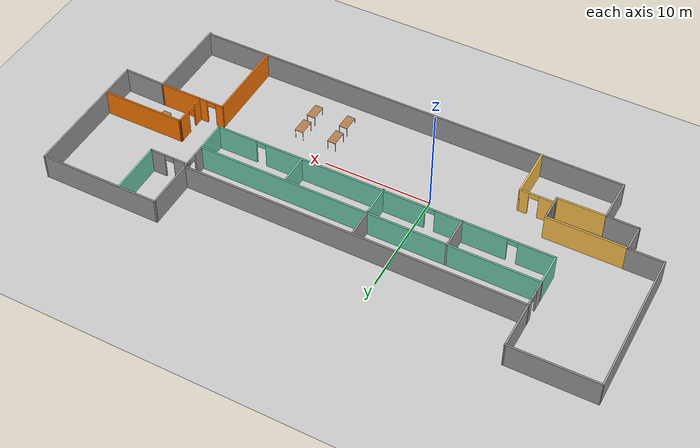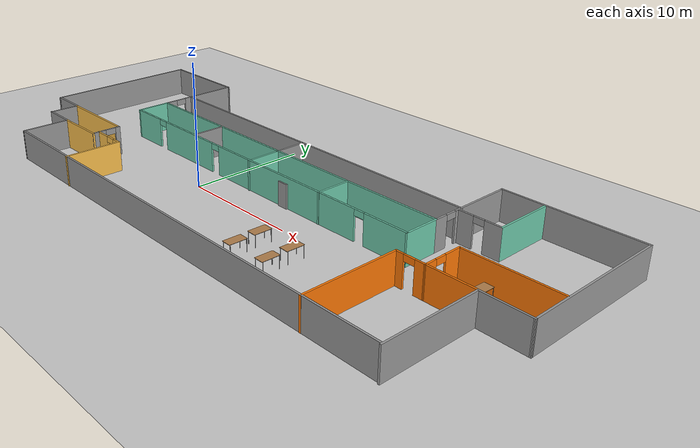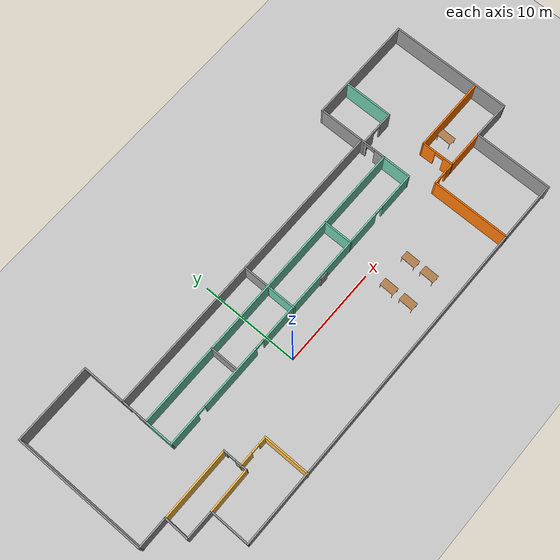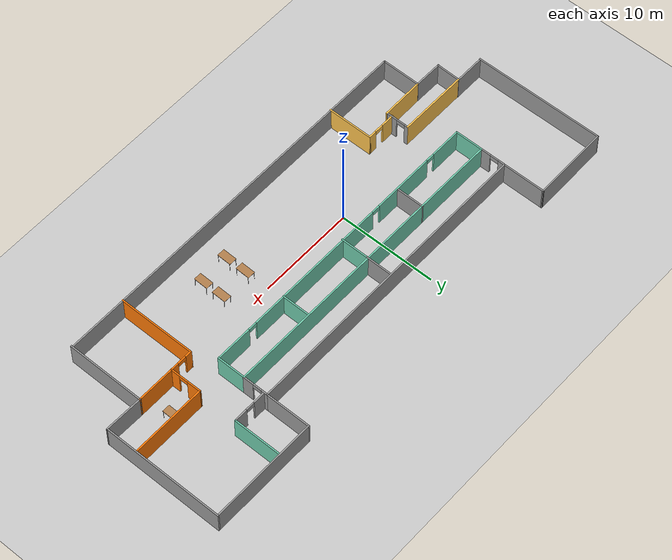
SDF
<sdf version="1.6">
 <world name="default">
  <model name="ground_plane">
   <static>1</static>
   <link name="link">
    <collision name="collision">
     <geometry><plane><normal>0 0 1</normal><size>100 100</size></plane></geometry>
     <surface>
      <contact><collide_bitmask>65535</collide_bitmask></contact>
      <friction><ode><mu>100</mu><mu2>50</mu2></ode></friction>
     </surface>
    </collision>
    <visual name="visual">
     <cast_shadows>0</cast_shadows>
     <geometry><plane><normal>0 0 1</normal><size>100 100</size></plane></geometry>
     <material>
      <script><uri>file://media/materials/scripts/gazebo.material</uri><name>Gazebo/Grey</name></script>
     </material>
    </visual>
   </link>
  </model>
  <model name="building">
   <model name="buildingEditorModel">
    <pose>5.31659 2.25421 0 0 -0 0</pose>
    <link name="Door_2">
     <collision name="Door_2_Collision">
      <geometry><box><size>0.9 0.17 2</size></box></geometry>
      <pose>0 0 1 0 -0 0</pose>
     </collision>
     <visual name="Door_2_Visual">
      <pose>0 0 1 0 -0 0</pose>
      <geometry><box><size>0.9 0.17 2</size></box></geometry>
      <material>
       <script><uri>file://media/materials/scripts/gazebo.material</uri><name>Gazebo/Grey</name></script>
      </material>
     </visual>
     <pose>2.1186 -0.056948 0 0 -0 0</pose>
    </link>
    <link name="Wall_12">
     <collision name="Wall_12_Collision">
      <geometry><box><size>11.25 0.15 2.5</size></box></geometry>
      <pose>0 0 1.25 0 -0 0</pose>
     </collision>
     <visual name="Wall_12_Visual">
      <pose>0 0 1.25 0 -0 0</pose>
      <geometry><box><size>11.25 0.15 2.5</size></box></geometry>
      <material>
       <script><uri>file://media/materials/scripts/gazebo.material</uri><name>Gazebo/Grey</name></script>
       <ambient>1 1 1 1</ambient>
      </material>
      <meta><layer>0</layer></meta>
     </visual>
     <pose>19.5996 10.1001 0 0 -0 3.14159</pose>
    </link>
    <link name="Wall_13">
     <collision name="Wall_13_Collision">
      <geometry><box><size>4.75 0.15 2.5</size></box></geometry>
      <pose>0 0 1.25 0 -0 0</pose>
     </collision>
     <visual name="Wall_13_Visual">
      <pose>0 0 1.25 0 -0 0</pose>
      <geometry><box><size>4.75 0.15 2.5</size></box></geometry>
      <material>
       <script><uri>file://media/materials/scripts/gazebo.material</uri><name>Gazebo/Grey</name></script>
       <ambient>1 1 1 1</ambient>
      </material>
      <meta><layer>0</layer></meta>
     </visual>
     <pose>14.0496 7.80012 0 0 -0 -1.5708</pose>
    </link>
    <link name="Wall_14">
     <collision name="Wall_14_Collision">
      <geometry><box><size>31.5 0.15 2.5</size></box></geometry>
      <pose>0 0 1.25 0 -0 0</pose>
     </collision>
     <visual name="Wall_14_Visual">
      <pose>0 0 1.25 0 -0 0</pose>
      <geometry><box><size>31.5 0.15 2.5</size></box></geometry>
      <material>
       <script><uri>file://media/materials/scripts/gazebo.material</uri><name>Gazebo/Grey</name></script>
       <ambient>1 1 1 1</ambient>
      </material>
      <meta><layer>0</layer></meta>
     </visual>
     <pose>-1.62541 5.50012 0 0 -0 3.14159</pose>
    </link>
    <link name="Wall_15">
     <collision name="Wall_15_Collision">
      <geometry><box><size>4.5 0.15 2.5</size></box></geometry>
      <pose>0 0 1.25 0 -0 0</pose>
     </collision>
     <visual name="Wall_15_Visual">
      <pose>0 0 1.25 0 -0 0</pose>
      <geometry><box><size>4.5 0.15 2.5</size></box></geometry>
      <material>
       <script><uri>file://media/materials/scripts/gazebo.material</uri><name>Gazebo/Grey</name></script>
       <ambient>1 1 1 1</ambient>
      </material>
      <meta><layer>0</layer></meta>
     </visual>
     <pose>-17.3004 7.67512 0 0 -0 1.5708</pose>
    </link>
    <link name="Wall_18">
     <collision name="Wall_18_Collision">
      <geometry><box><size>8.00016 0.15 2.5</size></box></geometry>
      <pose>0 0 1.25 0 -0 0</pose>
     </collision>
     <visual name="Wall_18_Visual">
      <pose>0 0 1.25 0 -0 0</pose>
      <geometry><box><size>8.00016 0.15 2.5</size></box></geometry>
      <material>
       <script><uri>file://media/materials/scripts/gazebo.material</uri><name>Gazebo/Grey</name></script>
       <ambient>1 1 1 1</ambient>
      </material>
      <meta><layer>0</layer></meta>
     </visual>
     <pose>-21.2254 9.82512 0 0 -0 0.006369</pose>
    </link>
    <link name="Wall_20">
     <pose>-17.3004 4.20012 0 0 -0 -1.5708</pose>
     <visual name="Wall_20_Visual_0">
      <pose>-1.00181 0 1.25 0 -0 0</pose>
      <geometry><box><size>0.746388 0.15 2.5</size></box></geometry>
      <material>
       <script><uri>file://media/materials/scripts/gazebo.material</uri><name>Gazebo/Grey</name></script>
       <ambient>1 1 1 1</ambient>
      </material>
      <meta><layer>0</layer></meta>
     </visual>
     <collision name="Wall_20_Collision_0">
      <geometry><box><size>0.746388 0.15 2.5</size></box></geometry>
      <pose>-1.00181 0 1.25 0 -0 0</pose>
     </collision>
     <visual name="Wall_20_Visual_1">
      <pose>0.823194 0 1.25 0 -0 0</pose>
      <geometry><box><size>1.10361 0.15 2.5</size></box></geometry>
      <material>
       <script><uri>file://media/materials/scripts/gazebo.material</uri><name>Gazebo/Grey</name></script>
       <ambient>1 1 1 1</ambient>
      </material>
      <meta><layer>0</layer></meta>
     </visual>
     <collision name="Wall_20_Collision_1">
      <geometry><box><size>1.10361 0.15 2.5</size></box></geometry>
      <pose>0.823194 0 1.25 0 -0 0</pose>
     </collision>
     <visual name="Wall_20_Visual_2">
      <pose>-0.178612 0 2.25 0 -0 0</pose>
      <geometry><box><size>0.9 0.15 0.5</size></box></geometry>
      <material>
       <script><uri>file://media/materials/scripts/gazebo.material</uri><name>Gazebo/Grey</name></script>
       <ambient>1 1 1 1</ambient>
      </material>
      <meta><layer>0</layer></meta>
     </visual>
     <collision name="Wall_20_Collision_2">
      <geometry><box><size>0.9 0.15 0.5</size></box></geometry>
      <pose>-0.178612 0 2.25 0 -0 0</pose>
     </collision>
    </link>
    <link name="Wall_21">
     <collision name="Wall_21_Collision">
      <geometry><box><size>31.5 0.15 2.5</size></box></geometry>
      <pose>0 0 1.25 0 -0 0</pose>
     </collision>
     <visual name="Wall_21_Visual">
      <pose>0 0 1.25 0 -0 0</pose>
      <geometry><box><size>31.5 0.15 2.5</size></box></geometry>
      <material>
       <script><uri>file://media/materials/scripts/gazebo.material</uri><name>Gazebo/Grey</name></script>
       <ambient>0.435294 0.796078 0.67451 1</ambient>
      </material>
      <meta><layer>0</layer></meta>
     </visual>
     <pose>-1.62541 2.90012 0 0 -0 0</pose>
    </link>
    <link name="Wall_22">
     <pose>14.0496 4.20012 0 0 -0 1.5708</pose>
     <visual name="Wall_22_Visual_0">
      <pose>-0.810224 0 1.25 0 -0 0</pose>
      <geometry><box><size>1.12955 0.15 2.5</size></box></geometry>
      <material>
       <script><uri>file://media/materials/scripts/gazebo.material</uri><name>Gazebo/Grey</name></script>
       <ambient>1 1 1 1</ambient>
      </material>
      <meta><layer>0</layer></meta>
     </visual>
     <collision name="Wall_22_Collision_0">
      <geometry><box><size>1.12955 0.15 2.5</size></box></geometry>
      <pose>-0.810224 0 1.25 0 -0 0</pose>
     </collision>
     <visual name="Wall_22_Visual_1">
      <pose>1.01478 0 1.25 0 -0 0</pose>
      <geometry><box><size>0.720448 0.15 2.5</size></box></geometry>
      <material>
       <script><uri>file://media/materials/scripts/gazebo.material</uri><name>Gazebo/Grey</name></script>
       <ambient>1 1 1 1</ambient>
      </material>
      <meta><layer>0</layer></meta>
     </visual>
     <collision name="Wall_22_Collision_1">
      <geometry><box><size>0.720448 0.15 2.5</size></box></geometry>
      <pose>1.01478 0 1.25 0 -0 0</pose>
     </collision>
     <visual name="Wall_22_Visual_2">
      <pose>0.204552 0 2.25 0 -0 0</pose>
      <geometry><box><size>0.9 0.15 0.5</size></box></geometry>
      <material>
       <script><uri>file://media/materials/scripts/gazebo.material</uri><name>Gazebo/Grey</name></script>
       <ambient>1 1 1 1</ambient>
      </material>
      <meta><layer>0</layer></meta>
     </visual>
     <collision name="Wall_22_Collision_2">
      <geometry><box><size>0.9 0.15 0.5</size></box></geometry>
      <pose>0.204552 0 2.25 0 -0 0</pose>
     </collision>
    </link>
    <link name="Wall_24">
     <collision name="Wall_24_Collision">
      <geometry><box><size>3 0.15 2.5</size></box></geometry>
      <pose>0 0 1.25 0 -0 0</pose>
     </collision>
     <visual name="Wall_24_Visual">
      <pose>0 0 1.25 0 -0 0</pose>
      <geometry><box><size>3 0.15 2.5</size></box></geometry>
      <material>
       <script><uri>file://media/materials/scripts/gazebo.material</uri><name>Gazebo/Grey</name></script>
       <ambient>0.435294 0.796078 0.67451 1</ambient>
      </material>
      <meta><layer>0</layer></meta>
     </visual>
     <pose>-17.3004 1.47512 0 0 -0 -1.5708</pose>
    </link>
    <link name="Wall_25">
     <pose>-1.62541 0.050122 0 0 -0 0</pose>
     <visual name="Wall_25_Visual_0">
      <pose>-14.0877 0 1.25 0 -0 0</pose>
      <geometry><box><size>3.32458 0.15 2.5</size></box></geometry>
      <material>
       <script><uri>file://media/materials/scripts/gazebo.material</uri><name>Gazebo/Grey</name></script>
       <ambient>0.435294 0.796078 0.67451 1</ambient>
      </material>
      <meta><layer>0</layer></meta>
     </visual>
     <collision name="Wall_25_Collision_0">
      <geometry><box><size>3.32458 0.15 2.5</size></box></geometry>
      <pose>-14.0877 0 1.25 0 -0 0</pose>
     </collision>
     <visual name="Wall_25_Visual_1">
      <pose>-8.27902 0 1.25 0 -0 0</pose>
      <geometry><box><size>6.4928 0.15 2.5</size></box></geometry>
      <material>
       <script><uri>file://media/materials/scripts/gazebo.material</uri><name>Gazebo/Grey</name></script>
       <ambient>0.435294 0.796078 0.67451 1</ambient>
      </material>
      <meta><layer>0</layer></meta>
     </visual>
     <collision name="Wall_25_Collision_1">
      <geometry><box><size>6.4928 0.15 2.5</size></box></geometry>
      <pose>-8.27902 0 1.25 0 -0 0</pose>
     </collision>
     <visual name="Wall_25_Visual_2">
      <pose>3.43273 0 1.25 0 -0 0</pose>
      <geometry><box><size>15.1307 0.15 2.5</size></box></geometry>
      <material>
       <script><uri>file://media/materials/scripts/gazebo.material</uri><name>Gazebo/Grey</name></script>
       <ambient>0.435294 0.796078 0.67451 1</ambient>
      </material>
      <meta><layer>0</layer></meta>
     </visual>
     <collision name="Wall_25_Collision_2">
      <geometry><box><size>15.1307 0.15 2.5</size></box></geometry>
      <pose>3.43273 0 1.25 0 -0 0</pose>
     </collision>
     <visual name="Wall_25_Visual_3">
      <pose>13.824 0 1.25 0 -0 0</pose>
      <geometry><box><size>3.85191 0.15 2.5</size></box></geometry>
      <material>
       <script><uri>file://media/materials/scripts/gazebo.material</uri><name>Gazebo/Grey</name></script>
       <ambient>0.435294 0.796078 0.67451 1</ambient>
      </material>
      <meta><layer>0</layer></meta>
     </visual>
     <collision name="Wall_25_Collision_3">
      <geometry><box><size>3.85191 0.15 2.5</size></box></geometry>
      <pose>13.824 0 1.25 0 -0 0</pose>
     </collision>
     <visual name="Wall_25_Visual_4">
      <pose>-11.9754 0 2.25 0 -0 0</pose>
      <geometry><box><size>0.9 0.15 0.5</size></box></geometry>
      <material>
       <script><uri>file://media/materials/scripts/gazebo.material</uri><name>Gazebo/Grey</name></script>
       <ambient>0.435294 0.796078 0.67451 1</ambient>
      </material>
      <meta><layer>0</layer></meta>
     </visual>
     <collision name="Wall_25_Collision_4">
      <geometry><box><size>0.9 0.15 0.5</size></box></geometry>
      <pose>-11.9754 0 2.25 0 -0 0</pose>
     </collision>
     <visual name="Wall_25_Visual_5">
      <pose>-4.58262 0 2.25 0 -0 0</pose>
      <geometry><box><size>0.9 0.15 0.5</size></box></geometry>
      <material>
       <script><uri>file://media/materials/scripts/gazebo.material</uri><name>Gazebo/Grey</name></script>
       <ambient>0.435294 0.796078 0.67451 1</ambient>
      </material>
      <meta><layer>0</layer></meta>
     </visual>
     <collision name="Wall_25_Collision_5">
      <geometry><box><size>0.9 0.15 0.5</size></box></geometry>
      <pose>-4.58262 0 2.25 0 -0 0</pose>
     </collision>
     <visual name="Wall_25_Visual_6">
      <pose>11.4481 0 2.25 0 -0 0</pose>
      <geometry><box><size>0.9 0.15 0.5</size></box></geometry>
      <material>
       <script><uri>file://media/materials/scripts/gazebo.material</uri><name>Gazebo/Grey</name></script>
       <ambient>0.435294 0.796078 0.67451 1</ambient>
      </material>
      <meta><layer>0</layer></meta>
     </visual>
     <collision name="Wall_25_Collision_6">
      <geometry><box><size>0.9 0.15 0.5</size></box></geometry>
      <pose>11.4481 0 2.25 0 -0 0</pose>
     </collision>
    </link>
    <link name="Wall_26">
     <collision name="Wall_26_Collision">
      <geometry><box><size>3 0.15 2.5</size></box></geometry>
      <pose>0 0 1.25 0 -0 0</pose>
     </collision>
     <visual name="Wall_26_Visual">
      <pose>0 0 1.25 0 -0 0</pose>
      <geometry><box><size>3 0.15 2.5</size></box></geometry>
      <material>
       <script><uri>file://media/materials/scripts/gazebo.material</uri><name>Gazebo/Grey</name></script>
       <ambient>0.435294 0.796078 0.67451 1</ambient>
      </material>
      <meta><layer>0</layer></meta>
     </visual>
     <pose>14.0496 1.47512 0 0 -0 1.5708</pose>
    </link>
    <link name="Wall_28">
     <collision name="Wall_28_Collision">
      <geometry><box><size>2.75 0.15 2.5</size></box></geometry>
      <pose>0 0 1.25 0 -0 0</pose>
     </collision>
     <visual name="Wall_28_Visual">
      <pose>0 0 1.25 0 -0 0</pose>
      <geometry><box><size>2.75 0.15 2.5</size></box></geometry>
      <material>
       <script><uri>file://media/materials/scripts/gazebo.material</uri><name>Gazebo/Grey</name></script>
       <ambient>1 1 1 1</ambient>
      </material>
      <meta><layer>0</layer></meta>
     </visual>
     <pose>-1.8761 4.11632 0 0 -0 -1.5708</pose>
    </link>
    <link name="Wall_30">
     <collision name="Wall_30_Collision">
      <geometry><box><size>3 0.15 2.5</size></box></geometry>
      <pose>0 0 1.25 0 -0 0</pose>
     </collision>
     <visual name="Wall_30_Visual">
      <pose>0 0 1.25 0 -0 0</pose>
      <geometry><box><size>3 0.15 2.5</size></box></geometry>
      <material>
       <script><uri>file://media/materials/scripts/gazebo.material</uri><name>Gazebo/Grey</name></script>
       <ambient>1 1 1 1</ambient>
      </material>
      <meta><layer>0</layer></meta>
     </visual>
     <pose>-9.11327 1.47517 0 0 -0 -1.5708</pose>
    </link>
    <link name="Wall_34">
     <collision name="Wall_34_Collision">
      <geometry><box><size>3 0.15 2.5</size></box></geometry>
      <pose>0 0 1.25 0 -0 0</pose>
     </collision>
     <visual name="Wall_34_Visual">
      <pose>0 0 1.25 0 -0 0</pose>
      <geometry><box><size>3 0.15 2.5</size></box></geometry>
      <material>
       <script><uri>file://media/materials/scripts/gazebo.material</uri><name>Gazebo/Grey</name></script>
       <ambient>0.435294 0.796078 0.67451 1</ambient>
      </material>
      <meta><layer>0</layer></meta>
     </visual>
     <pose>-1.8761 1.39132 0 0 -0 -1.5708</pose>
    </link>
    <link name="Wall_36">
     <collision name="Wall_36_Collision">
      <geometry><box><size>3 0.15 2.5</size></box></geometry>
      <pose>0 0 1.25 0 -0 0</pose>
     </collision>
     <visual name="Wall_36_Visual">
      <pose>0 0 1.25 0 -0 0</pose>
      <geometry><box><size>3 0.15 2.5</size></box></geometry>
      <material>
       <script><uri>file://media/materials/scripts/gazebo.material</uri><name>Gazebo/Grey</name></script>
       <ambient>0.435294 0.796078 0.67451 1</ambient>
      </material>
      <meta><layer>0</layer></meta>
     </visual>
     <pose>5.85391 1.44923 0 0 -0 -1.5708</pose>
    </link>
    <link name="Wall_38">
     <collision name="Wall_38_Collision">
      <geometry><box><size>12.5 0.15 2.5</size></box></geometry>
      <pose>0 0 1.25 0 -0 0</pose>
     </collision>
     <visual name="Wall_38_Visual">
      <pose>0 0 1.25 0 -0 0</pose>
      <geometry><box><size>12.5 0.15 2.5</size></box></geometry>
      <material>
       <script><uri>file://media/materials/scripts/gazebo.material</uri><name>Gazebo/Grey</name></script>
       <ambient>1 1 1 1</ambient>
      </material>
      <meta><layer>0</layer></meta>
     </visual>
     <pose>25.1496 3.92512 0 0 -0 -1.5708</pose>
    </link>
    <link name="Wall_39">
     <collision name="Wall_39_Collision">
      <geometry><box><size>3.97441 0.15 2.5</size></box></geometry>
      <pose>0 0 1.25 0 -0 0</pose>
     </collision>
     <visual name="Wall_39_Visual">
      <pose>0 0 1.25 0 -0 0</pose>
      <geometry><box><size>3.97441 0.15 2.5</size></box></geometry>
      <material>
       <script><uri>file://media/materials/scripts/gazebo.material</uri><name>Gazebo/Grey</name></script>
       <ambient>1 1 1 1</ambient>
      </material>
      <meta><layer>0</layer></meta>
     </visual>
     <pose>23.2376 -2.21097 0 0 -0 3.12125</pose>
    </link>
    <link name="Wall_40">
     <collision name="Wall_40_Collision">
      <geometry><box><size>8.07786 0.15 2.5</size></box></geometry>
      <pose>0 0 1.25 0 -0 0</pose>
     </collision>
     <visual name="Wall_40_Visual">
      <pose>0 0 1.25 0 -0 0</pose>
      <geometry><box><size>8.07786 0.15 2.5</size></box></geometry>
      <material>
       <script><uri>file://media/materials/scripts/gazebo.material</uri><name>Gazebo/Grey</name></script>
       <ambient>1 1 1 1</ambient>
      </material>
      <meta><layer>0</layer></meta>
     </visual>
     <pose>21.3126 -6.13597 0 0 -0 -1.57407</pose>
    </link>
    <link name="Wall_42">
     <collision name="Wall_42_Collision">
      <geometry><box><size>40.5 0.15 2.5</size></box></geometry>
      <pose>0 0 1.25 0 -0 0</pose>
     </collision>
     <visual name="Wall_42_Visual">
      <pose>0 0 1.25 0 -0 0</pose>
      <geometry><box><size>40.5 0.15 2.5</size></box></geometry>
      <material>
       <script><uri>file://media/materials/scripts/gazebo.material</uri><name>Gazebo/Grey</name></script>
       <ambient>1 1 1 1</ambient>
      </material>
      <meta><layer>0</layer></meta>
     </visual>
     <pose>0.974593 -9.99988 0 0 -0 0</pose>
    </link>
    <link name="Wall_45">
     <collision name="Wall_45_Collision">
      <geometry><box><size>7.25 0.15 2.5</size></box></geometry>
      <pose>0 0 1.25 0 -0 0</pose>
     </collision>
     <visual name="Wall_45_Visual">
      <pose>0 0 1.25 0 -0 0</pose>
      <geometry><box><size>7.25 0.15 2.5</size></box></geometry>
      <material>
       <script><uri>file://media/materials/scripts/gazebo.material</uri><name>Gazebo/Grey</name></script>
       <ambient>1 0.764706 0.305882 1</ambient>
      </material>
      <meta><layer>0</layer></meta>
     </visual>
     <pose>-18.4226 -3.61565 0 0 -0 0</pose>
    </link>
    <link name="Wall_46">
     <pose>-14.8726 -4.81659 0 0 -0 -1.5708</pose>
     <visual name="Wall_46_Visual_0">
      <pose>-1.06386 0 1.25 0 -0 0</pose>
      <geometry><box><size>0.424155 0.15 2.5</size></box></geometry>
      <material>
       <script><uri>file://media/materials/scripts/gazebo.material</uri><name>Gazebo/Grey</name></script>
       <ambient>1 1 1 1</ambient>
      </material>
      <meta><layer>0</layer></meta>
     </visual>
     <collision name="Wall_46_Collision_0">
      <geometry><box><size>0.424155 0.15 2.5</size></box></geometry>
      <pose>-1.06386 0 1.25 0 -0 0</pose>
     </collision>
     <visual name="Wall_46_Visual_1">
      <pose>0.662078 0 1.25 0 -0 0</pose>
      <geometry><box><size>1.22772 0.15 2.5</size></box></geometry>
      <material>
       <script><uri>file://media/materials/scripts/gazebo.material</uri><name>Gazebo/Grey</name></script>
       <ambient>1 1 1 1</ambient>
      </material>
      <meta><layer>0</layer></meta>
     </visual>
     <collision name="Wall_46_Collision_1">
      <geometry><box><size>1.22772 0.15 2.5</size></box></geometry>
      <pose>0.662078 0 1.25 0 -0 0</pose>
     </collision>
     <visual name="Wall_46_Visual_2">
      <pose>-0.401784 0 2.25 0 -0 0</pose>
      <geometry><box><size>0.9 0.15 0.5</size></box></geometry>
      <material>
       <script><uri>file://media/materials/scripts/gazebo.material</uri><name>Gazebo/Grey</name></script>
       <ambient>1 1 1 1</ambient>
      </material>
      <meta><layer>0</layer></meta>
     </visual>
     <collision name="Wall_46_Collision_2">
      <geometry><box><size>0.9 0.15 0.5</size></box></geometry>
      <pose>-0.401784 0 2.25 0 -0 0</pose>
     </collision>
    </link>
    <link name="Wall_47">
     <collision name="Wall_47_Collision">
      <geometry><box><size>4.45217 0.15 2.5</size></box></geometry>
      <pose>0 0 1.25 0 -0 0</pose>
     </collision>
     <visual name="Wall_47_Visual">
      <pose>0 0 1.25 0 -0 0</pose>
      <geometry><box><size>4.45217 0.15 2.5</size></box></geometry>
      <material>
       <script><uri>file://media/materials/scripts/gazebo.material</uri><name>Gazebo/Grey</name></script>
       <ambient>1 0.764706 0.305882 1</ambient>
      </material>
      <meta><layer>0</layer></meta>
     </visual>
     <pose>-16.9976 -6.04235 0 0 -0 -3.13006</pose>
    </link>
    <link name="Wall_5">
     <collision name="Wall_5_Collision">
      <geometry><box><size>13.566 0.15 2.5</size></box></geometry>
      <pose>0 0 1.25 0 -0 0</pose>
     </collision>
     <visual name="Wall_5_Visual">
      <pose>0 0 1.25 0 -0 0</pose>
      <geometry><box><size>13.566 0.15 2.5</size></box></geometry>
      <material>
       <script><uri>file://media/materials/scripts/gazebo.material</uri><name>Gazebo/Grey</name></script>
       <ambient>1 1 1 1</ambient>
      </material>
      <meta><layer>0</layer></meta>
     </visual>
     <pose>-25.1115 3.09223 0 0 -0 -1.565</pose>
    </link>
    <link name="Wall_51">
     <pose>-13.3738 -5.4524 0 0 -0 0</pose>
     <visual name="Wall_51_Visual_0">
      <pose>-0.891642 0 1.25 0 -0 0</pose>
      <geometry><box><size>1.46672 0.15 2.5</size></box></geometry>
      <material>
       <script><uri>file://media/materials/scripts/gazebo.material</uri><name>Gazebo/Grey</name></script>
       <ambient>1 0.764706 0.305882 1</ambient>
      </material>
      <meta><layer>0</layer></meta>
     </visual>
     <collision name="Wall_51_Collision_0">
      <geometry><box><size>1.46672 0.15 2.5</size></box></geometry>
      <pose>-0.891642 0 1.25 0 -0 0</pose>
     </collision>
     <visual name="Wall_51_Visual_1">
      <pose>1.18336 0 1.25 0 -0 0</pose>
      <geometry><box><size>0.883284 0.15 2.5</size></box></geometry>
      <material>
       <script><uri>file://media/materials/scripts/gazebo.material</uri><name>Gazebo/Grey</name></script>
       <ambient>1 0.764706 0.305882 1</ambient>
      </material>
      <meta><layer>0</layer></meta>
     </visual>
     <collision name="Wall_51_Collision_1">
      <geometry><box><size>0.883284 0.15 2.5</size></box></geometry>
      <pose>1.18336 0 1.25 0 -0 0</pose>
     </collision>
     <visual name="Wall_51_Visual_2">
      <pose>0.291716 0 2.25 0 -0 0</pose>
      <geometry><box><size>0.9 0.15 0.5</size></box></geometry>
      <material>
       <script><uri>file://media/materials/scripts/gazebo.material</uri><name>Gazebo/Grey</name></script>
       <ambient>1 0.764706 0.305882 1</ambient>
      </material>
      <meta><layer>0</layer></meta>
     </visual>
     <collision name="Wall_51_Collision_2">
      <geometry><box><size>0.9 0.15 0.5</size></box></geometry>
      <pose>0.291716 0 2.25 0 -0 0</pose>
     </collision>
    </link>
    <link name="Wall_52">
     <collision name="Wall_52_Collision">
      <geometry><box><size>4.75 0.15 2.5</size></box></geometry>
      <pose>0 0 1.25 0 -0 0</pose>
     </collision>
     <visual name="Wall_52_Visual">
      <pose>0 0 1.25 0 -0 0</pose>
      <geometry><box><size>4.75 0.15 2.5</size></box></geometry>
      <material>
       <script><uri>file://media/materials/scripts/gazebo.material</uri><name>Gazebo/Grey</name></script>
       <ambient>1 0.764706 0.305882 1</ambient>
      </material>
      <meta><layer>0</layer></meta>
     </visual>
     <pose>-11.8238 -7.7524 0 0 -0 -1.5708</pose>
    </link>
    <link name="Wall_54">
     <collision name="Wall_54_Collision">
      <geometry><box><size>7.75 0.15 2.5</size></box></geometry>
      <pose>0 0 1.25 0 -0 0</pose>
     </collision>
     <visual name="Wall_54_Visual">
      <pose>0 0 1.25 0 -0 0</pose>
      <geometry><box><size>7.75 0.15 2.5</size></box></geometry>
      <material>
       <script><uri>file://media/materials/scripts/gazebo.material</uri><name>Gazebo/Grey</name></script>
       <ambient>0.996078 0.47451 0.0196078 1</ambient>
      </material>
      <meta><layer>0</layer></meta>
     </visual>
     <pose>21.2493 1.03252 0 0 -0 3.14159</pose>
    </link>
    <link name="Wall_58">
     <collision name="Wall_58_Collision">
      <geometry><box><size>4 0.15 2.5</size></box></geometry>
      <pose>0 0 1.25 0 -0 0</pose>
     </collision>
     <visual name="Wall_58_Visual">
      <pose>0 0 1.25 0 -0 0</pose>
      <geometry><box><size>4 0.15 2.5</size></box></geometry>
      <material>
       <script><uri>file://media/materials/scripts/gazebo.material</uri><name>Gazebo/Grey</name></script>
       <ambient>0.996078 0.47451 0.0196078 1</ambient>
      </material>
      <meta><layer>0</layer></meta>
     </visual>
     <pose>19.4005 -2.17206 0 0 -0 3.14159</pose>
    </link>
    <link name="Wall_59">
     <pose>17.4624 -0.569771 0 0 -0 1.57899</pose>
     <visual name="Wall_59_Visual_0">
      <pose>-1.17025 0 1.25 0 -0 0</pose>
      <geometry><box><size>1.01419 0.15 2.5</size></box></geometry>
      <material>
       <script><uri>file://media/materials/scripts/gazebo.material</uri><name>Gazebo/Grey</name></script>
       <ambient>0.996078 0.47451 0.0196078 1</ambient>
      </material>
      <meta><layer>0</layer></meta>
     </visual>
     <collision name="Wall_59_Collision_0">
      <geometry><box><size>1.01419 0.15 2.5</size></box></geometry>
      <pose>-1.17025 0 1.25 0 -0 0</pose>
     </collision>
     <visual name="Wall_59_Visual_1">
      <pose>0.957093 0 1.25 0 -0 0</pose>
      <geometry><box><size>1.4405 0.15 2.5</size></box></geometry>
      <material>
       <script><uri>file://media/materials/scripts/gazebo.material</uri><name>Gazebo/Grey</name></script>
       <ambient>0.996078 0.47451 0.0196078 1</ambient>
      </material>
      <meta><layer>0</layer></meta>
     </visual>
     <collision name="Wall_59_Collision_1">
      <geometry><box><size>1.4405 0.15 2.5</size></box></geometry>
      <pose>0.957093 0 1.25 0 -0 0</pose>
     </collision>
     <visual name="Wall_59_Visual_2">
      <pose>-0.213157 0 2.25 0 -0 0</pose>
      <geometry><box><size>0.9 0.15 0.5</size></box></geometry>
      <material>
       <script><uri>file://media/materials/scripts/gazebo.material</uri><name>Gazebo/Grey</name></script>
       <ambient>0.996078 0.47451 0.0196078 1</ambient>
      </material>
      <meta><layer>0</layer></meta>
     </visual>
     <collision name="Wall_59_Collision_2">
      <geometry><box><size>0.9 0.15 0.5</size></box></geometry>
      <pose>-0.213157 0 2.25 0 -0 0</pose>
     </collision>
    </link>
    <link name="Wall_6">
     <collision name="Wall_6_Collision">
      <geometry><box><size>3.25 0.15 2.5</size></box></geometry>
      <pose>0 0 1.25 0 -0 0</pose>
     </collision>
     <visual name="Wall_6_Visual">
      <pose>0 0 1.25 0 -0 0</pose>
      <geometry><box><size>3.25 0.15 2.5</size></box></geometry>
      <material>
       <script><uri>file://media/materials/scripts/gazebo.material</uri><name>Gazebo/Grey</name></script>
       <ambient>1 1 1 1</ambient>
      </material>
      <meta><layer>0</layer></meta>
     </visual>
     <pose>-23.5226 -3.58971 0 0 -0 0</pose>
    </link>
    <link name="Wall_62">
     <pose>16.3005 -2.17206 0 0 -0 3.14159</pose>
     <visual name="Wall_62_Visual_0">
      <pose>-0.814621 0 1.25 0 -0 0</pose>
      <geometry><box><size>0.870759 0.15 2.5</size></box></geometry>
      <material>
       <script><uri>file://media/materials/scripts/gazebo.material</uri><name>Gazebo/Grey</name></script>
       <ambient>0.996078 0.47451 0.0196078 1</ambient>
      </material>
      <meta><layer>0</layer></meta>
     </visual>
     <collision name="Wall_62_Collision_0">
      <geometry><box><size>0.870759 0.15 2.5</size></box></geometry>
      <pose>-0.814621 0 1.25 0 -0 0</pose>
     </collision>
     <visual name="Wall_62_Visual_1">
      <pose>0.885379 0 1.25 0 -0 0</pose>
      <geometry><box><size>0.729241 0.15 2.5</size></box></geometry>
      <material>
       <script><uri>file://media/materials/scripts/gazebo.material</uri><name>Gazebo/Grey</name></script>
       <ambient>0.996078 0.47451 0.0196078 1</ambient>
      </material>
      <meta><layer>0</layer></meta>
     </visual>
     <collision name="Wall_62_Collision_1">
      <geometry><box><size>0.729241 0.15 2.5</size></box></geometry>
      <pose>0.885379 0 1.25 0 -0 0</pose>
     </collision>
     <visual name="Wall_62_Visual_2">
      <pose>0.070759 0 2.25 0 -0 0</pose>
      <geometry><box><size>0.9 0.15 0.5</size></box></geometry>
      <material>
       <script><uri>file://media/materials/scripts/gazebo.material</uri><name>Gazebo/Grey</name></script>
       <ambient>0.996078 0.47451 0.0196078 1</ambient>
      </material>
      <meta><layer>0</layer></meta>
     </visual>
     <collision name="Wall_62_Collision_2">
      <geometry><box><size>0.9 0.15 0.5</size></box></geometry>
      <pose>0.070759 0 2.25 0 -0 0</pose>
     </collision>
    </link>
    <link name="Wall_63">
     <collision name="Wall_63_Collision">
      <geometry><box><size>8 0.15 2.5</size></box></geometry>
      <pose>0 0 1.25 0 -0 0</pose>
     </collision>
     <visual name="Wall_63_Visual">
      <pose>0 0 1.25 0 -0 0</pose>
      <geometry><box><size>8 0.15 2.5</size></box></geometry>
      <material>
       <script><uri>file://media/materials/scripts/gazebo.material</uri><name>Gazebo/Grey</name></script>
       <ambient>0.996078 0.47451 0.0196078 1</ambient>
      </material>
      <meta><layer>0</layer></meta>
     </visual>
     <pose>15.1255 -6.09706 0 0 -0 -1.5708</pose>
    </link>
    <link name="Wall_65">
     <pose>15.8249 5.18286 0 0 -0 0</pose>
     <visual name="Wall_65_Visual_0">
      <pose>-1.16758 0 1.25 0 -0 0</pose>
      <geometry><box><size>1.41484 0.15 2.5</size></box></geometry>
      <material>
       <script><uri>file://media/materials/scripts/gazebo.material</uri><name>Gazebo/Grey</name></script>
       <ambient>1 1 1 1</ambient>
      </material>
      <meta><layer>0</layer></meta>
     </visual>
     <collision name="Wall_65_Collision_0">
      <geometry><box><size>1.41484 0.15 2.5</size></box></geometry>
      <pose>-1.16758 0 1.25 0 -0 0</pose>
     </collision>
     <visual name="Wall_65_Visual_1">
      <pose>1.15742 0 1.25 0 -0 0</pose>
      <geometry><box><size>1.43516 0.15 2.5</size></box></geometry>
      <material>
       <script><uri>file://media/materials/scripts/gazebo.material</uri><name>Gazebo/Grey</name></script>
       <ambient>1 1 1 1</ambient>
      </material>
      <meta><layer>0</layer></meta>
     </visual>
     <collision name="Wall_65_Collision_1">
      <geometry><box><size>1.43516 0.15 2.5</size></box></geometry>
      <pose>1.15742 0 1.25 0 -0 0</pose>
     </collision>
     <visual name="Wall_65_Visual_2">
      <pose>-0.010162 0 2.25 0 -0 0</pose>
      <geometry><box><size>0.9 0.15 0.5</size></box></geometry>
      <material>
       <script><uri>file://media/materials/scripts/gazebo.material</uri><name>Gazebo/Grey</name></script>
       <ambient>1 1 1 1</ambient>
      </material>
      <meta><layer>0</layer></meta>
     </visual>
     <collision name="Wall_65_Collision_2">
      <geometry><box><size>0.9 0.15 0.5</size></box></geometry>
      <pose>-0.010162 0 2.25 0 -0 0</pose>
     </collision>
    </link>
    <link name="Wall_66">
     <collision name="Wall_66_Collision">
      <geometry><box><size>5 0.15 2.5</size></box></geometry>
      <pose>0 0 1.25 0 -0 0</pose>
     </collision>
     <visual name="Wall_66_Visual">
      <pose>0 0 1.25 0 -0 0</pose>
      <geometry><box><size>5 0.15 2.5</size></box></geometry>
      <material>
       <script><uri>file://media/materials/scripts/gazebo.material</uri><name>Gazebo/Grey</name></script>
       <ambient>0.435294 0.796078 0.67451 1</ambient>
      </material>
      <meta><layer>0</layer></meta>
     </visual>
     <pose>17.6249 7.60786 0 0 -0 1.5708</pose>
    </link>
    <link name="Wall_7">
     <collision name="Wall_7_Collision">
      <geometry><box><size>2.55019 0.15 2.5</size></box></geometry>
      <pose>0 0 1.25 0 -0 0</pose>
     </collision>
     <visual name="Wall_7_Visual">
      <pose>0 0 1.25 0 -0 0</pose>
      <geometry><box><size>2.55019 0.15 2.5</size></box></geometry>
      <material>
       <script><uri>file://media/materials/scripts/gazebo.material</uri><name>Gazebo/Grey</name></script>
       <ambient>1 1 1 1</ambient>
      </material>
      <meta><layer>0</layer></meta>
     </visual>
     <pose>-21.9985 -4.81547 0 0 -0 -1.59241</pose>
    </link>
    <link name="Wall_8">
     <collision name="Wall_8_Collision">
      <geometry><box><size>3.02606 0.15 2.5</size></box></geometry>
      <pose>0 0 1.25 0 -0 0</pose>
     </collision>
     <visual name="Wall_8_Visual">
      <pose>0 0 1.25 0 -0 0</pose>
      <geometry><box><size>3.02606 0.15 2.5</size></box></geometry>
      <material>
       <script><uri>file://media/materials/scripts/gazebo.material</uri><name>Gazebo/Grey</name></script>
       <ambient>1 1 1 1</ambient>
      </material>
      <meta><layer>0</layer></meta>
     </visual>
     <pose>-20.6124 -6.05419 0 0 -0 -0.009019</pose>
    </link>
    <link name="Wall_9">
     <collision name="Wall_9_Collision">
      <geometry><box><size>4.0828 0.15 2.5</size></box></geometry>
      <pose>0 0 1.25 0 -0 0</pose>
     </collision>
     <visual name="Wall_9_Visual">
      <pose>0 0 1.25 0 -0 0</pose>
      <geometry><box><size>4.0828 0.15 2.5</size></box></geometry>
      <material>
       <script><uri>file://media/materials/scripts/gazebo.material</uri><name>Gazebo/Grey</name></script>
       <ambient>1 1 1 1</ambient>
      </material>
      <meta><layer>0</layer></meta>
     </visual>
     <pose>-19.1874 -8.03352 0 0 -0 -1.57739</pose>
    </link>
    <static>1</static>
   </model>
   <model name="table_3_clone_2">
    <static>1</static>
    <link name="link">
     <collision name="surface">
      <pose>0 0 1 0 -0 0</pose>
      <geometry><box><size>1.5 0.8 0.03</size></box></geometry>
      <surface><friction><ode><mu>0.6</mu><mu2>0.6</mu2></ode></friction></surface>
     </collision>
     <visual name="visual1">
      <pose>0 0 1 0 -0 0</pose>
      <geometry><box><size>1.5 0.8 0.03</size></box></geometry>
      <material>
       <script><uri>file://media/materials/scripts/gazebo.material</uri><name>Gazebo/Wood</name></script>
      </material>
     </visual>
     <collision name="front_left_leg">
      <pose>0.68 0.38 0.5 0 -0 0</pose>
      <geometry><cylinder><radius>0.02</radius><length>1</length></cylinder></geometry>
     </collision>
     <visual name="front_left_leg">
      <pose>0.68 0.38 0.5 0 -0 0</pose>
      <geometry><cylinder><radius>0.02</radius><length>1</length></cylinder></geometry>
      <material>
       <script><uri>file://media/materials/scripts/gazebo.material</uri><name>Gazebo/Grey</name></script>
      </material>
     </visual>
     <collision name="front_right_leg">
      <pose>0.68 -0.38 0.5 0 -0 0</pose>
      <geometry><cylinder><radius>0.02</radius><length>1</length></cylinder></geometry>
     </collision>
     <visual name="front_right_leg">
      <pose>0.68 -0.38 0.5 0 -0 0</pose>
      <geometry><cylinder><radius>0.02</radius><length>1</length></cylinder></geometry>
      <material>
       <script><uri>file://media/materials/scripts/gazebo.material</uri><name>Gazebo/Grey</name></script>
      </material>
     </visual>
     <collision name="back_right_leg">
      <pose>-0.68 -0.38 0.5 0 -0 0</pose>
      <geometry><cylinder><radius>0.02</radius><length>1</length></cylinder></geometry>
     </collision>
     <visual name="back_right_leg">
      <pose>-0.68 -0.38 0.5 0 -0 0</pose>
      <geometry><cylinder><radius>0.02</radius><length>1</length></cylinder></geometry>
      <material>
       <script><uri>file://media/materials/scripts/gazebo.material</uri><name>Gazebo/Grey</name></script>
      </material>
     </visual>
     <collision name="back_left_leg">
      <pose>-0.68 0.38 0.5 0 -0 0</pose>
      <geometry><cylinder><radius>0.02</radius><length>1</length></cylinder></geometry>
     </collision>
     <visual name="back_left_leg">
      <pose>-0.68 0.38 0.5 0 -0 0</pose>
      <geometry><cylinder><radius>0.02</radius><length>1</length></cylinder></geometry>
      <material>
       <script><uri>file://media/materials/scripts/gazebo.material</uri><name>Gazebo/Grey</name></script>
      </material>
     </visual>
    </link>
    <pose>10.6353 -4.79761 0 0 0 -1.59458</pose>
   </model>
   <model name="table_3_clone_3">
    <static>1</static>
    <link name="link">
     <collision name="surface">
      <pose>0 0 1 0 -0 0</pose>
      <geometry><box><size>1.5 0.8 0.03</size></box></geometry>
      <surface><friction><ode><mu>0.6</mu><mu2>0.6</mu2></ode></friction></surface>
     </collision>
     <visual name="visual1">
      <pose>0 0 1 0 -0 0</pose>
      <geometry><box><size>1.5 0.8 0.03</size></box></geometry>
      <material>
       <script><uri>file://media/materials/scripts/gazebo.material</uri><name>Gazebo/Wood</name></script>
      </material>
     </visual>
     <collision name="front_left_leg">
      <pose>0.68 0.38 0.5 0 -0 0</pose>
      <geometry><cylinder><radius>0.02</radius><length>1</length></cylinder></geometry>
     </collision>
     <visual name="front_left_leg">
      <pose>0.68 0.38 0.5 0 -0 0</pose>
      <geometry><cylinder><radius>0.02</radius><length>1</length></cylinder></geometry>
      <material>
       <script><uri>file://media/materials/scripts/gazebo.material</uri><name>Gazebo/Grey</name></script>
      </material>
     </visual>
     <collision name="front_right_leg">
      <pose>0.68 -0.38 0.5 0 -0 0</pose>
      <geometry><cylinder><radius>0.02</radius><length>1</length></cylinder></geometry>
     </collision>
     <visual name="front_right_leg">
      <pose>0.68 -0.38 0.5 0 -0 0</pose>
      <geometry><cylinder><radius>0.02</radius><length>1</length></cylinder></geometry>
      <material>
       <script><uri>file://media/materials/scripts/gazebo.material</uri><name>Gazebo/Grey</name></script>
      </material>
     </visual>
     <collision name="back_right_leg">
      <pose>-0.68 -0.38 0.5 0 -0 0</pose>
      <geometry><cylinder><radius>0.02</radius><length>1</length></cylinder></geometry>
     </collision>
     <visual name="back_right_leg">
      <pose>-0.68 -0.38 0.5 0 -0 0</pose>
      <geometry><cylinder><radius>0.02</radius><length>1</length></cylinder></geometry>
      <material>
       <script><uri>file://media/materials/scripts/gazebo.material</uri><name>Gazebo/Grey</name></script>
      </material>
     </visual>
     <collision name="back_left_leg">
      <pose>-0.68 0.38 0.5 0 -0 0</pose>
      <geometry><cylinder><radius>0.02</radius><length>1</length></cylinder></geometry>
     </collision>
     <visual name="back_left_leg">
      <pose>-0.68 0.38 0.5 0 -0 0</pose>
      <geometry><cylinder><radius>0.02</radius><length>1</length></cylinder></geometry>
      <material>
       <script><uri>file://media/materials/scripts/gazebo.material</uri><name>Gazebo/Grey</name></script>
      </material>
     </visual>
    </link>
    <pose>10.6264 -2.65801 0 0 0 -1.59458</pose>
   </model>
   <model name="table_3_clone_4">
    <static>1</static>
    <link name="link">
     <collision name="surface">
      <pose>0 0 1 0 -0 0</pose>
      <geometry><box><size>1.5 0.8 0.03</size></box></geometry>
      <surface><friction><ode><mu>0.6</mu><mu2>0.6</mu2></ode></friction></surface>
     </collision>
     <visual name="visual1">
      <pose>0 0 1 0 -0 0</pose>
      <geometry><box><size>1.5 0.8 0.03</size></box></geometry>
      <material>
       <script><uri>file://media/materials/scripts/gazebo.material</uri><name>Gazebo/Wood</name></script>
      </material>
     </visual>
     <collision name="front_left_leg">
      <pose>0.68 0.38 0.5 0 -0 0</pose>
      <geometry><cylinder><radius>0.02</radius><length>1</length></cylinder></geometry>
     </collision>
     <visual name="front_left_leg">
      <pose>0.68 0.38 0.5 0 -0 0</pose>
      <geometry><cylinder><radius>0.02</radius><length>1</length></cylinder></geometry>
      <material>
       <script><uri>file://media/materials/scripts/gazebo.material</uri><name>Gazebo/Grey</name></script>
      </material>
     </visual>
     <collision name="front_right_leg">
      <pose>0.68 -0.38 0.5 0 -0 0</pose>
      <geometry><cylinder><radius>0.02</radius><length>1</length></cylinder></geometry>
     </collision>
     <visual name="front_right_leg">
      <pose>0.68 -0.38 0.5 0 -0 0</pose>
      <geometry><cylinder><radius>0.02</radius><length>1</length></cylinder></geometry>
      <material>
       <script><uri>file://media/materials/scripts/gazebo.material</uri><name>Gazebo/Grey</name></script>
      </material>
     </visual>
     <collision name="back_right_leg">
      <pose>-0.68 -0.38 0.5 0 -0 0</pose>
      <geometry><cylinder><radius>0.02</radius><length>1</length></cylinder></geometry>
     </collision>
     <visual name="back_right_leg">
      <pose>-0.68 -0.38 0.5 0 -0 0</pose>
      <geometry><cylinder><radius>0.02</radius><length>1</length></cylinder></geometry>
      <material>
       <script><uri>file://media/materials/scripts/gazebo.material</uri><name>Gazebo/Grey</name></script>
      </material>
     </visual>
     <collision name="back_left_leg">
      <pose>-0.68 0.38 0.5 0 -0 0</pose>
      <geometry><cylinder><radius>0.02</radius><length>1</length></cylinder></geometry>
     </collision>
     <visual name="back_left_leg">
      <pose>-0.68 0.38 0.5 0 -0 0</pose>
      <geometry><cylinder><radius>0.02</radius><length>1</length></cylinder></geometry>
      <material>
       <script><uri>file://media/materials/scripts/gazebo.material</uri><name>Gazebo/Grey</name></script>
      </material>
     </visual>
    </link>
    <pose>13.7994 -2.53827 0 0 0 -1.59458</pose>
   </model>
   <model name="table_3_clone_5">
    <static>1</static>
    <link name="link">
     <collision name="surface">
      <pose>0 0 1 0 -0 0</pose>
      <geometry><box><size>1.5 0.8 0.03</size></box></geometry>
      <surface><friction><ode><mu>0.6</mu><mu2>0.6</mu2></ode></friction></surface>
     </collision>
     <visual name="visual1">
      <pose>0 0 1 0 -0 0</pose>
      <geometry><box><size>1.5 0.8 0.03</size></box></geometry>
      <material>
       <script><uri>file://media/materials/scripts/gazebo.material</uri><name>Gazebo/Wood</name></script>
      </material>
     </visual>
     <collision name="front_left_leg">
      <pose>0.68 0.38 0.5 0 -0 0</pose>
      <geometry><cylinder><radius>0.02</radius><length>1</length></cylinder></geometry>
     </collision>
     <visual name="front_left_leg">
      <pose>0.68 0.38 0.5 0 -0 0</pose>
      <geometry><cylinder><radius>0.02</radius><length>1</length></cylinder></geometry>
      <material>
       <script><uri>file://media/materials/scripts/gazebo.material</uri><name>Gazebo/Grey</name></script>
      </material>
     </visual>
     <collision name="front_right_leg">
      <pose>0.68 -0.38 0.5 0 -0 0</pose>
      <geometry><cylinder><radius>0.02</radius><length>1</length></cylinder></geometry>
     </collision>
     <visual name="front_right_leg">
      <pose>0.68 -0.38 0.5 0 -0 0</pose>
      <geometry><cylinder><radius>0.02</radius><length>1</length></cylinder></geometry>
      <material>
       <script><uri>file://media/materials/scripts/gazebo.material</uri><name>Gazebo/Grey</name></script>
      </material>
     </visual>
     <collision name="back_right_leg">
      <pose>-0.68 -0.38 0.5 0 -0 0</pose>
      <geometry><cylinder><radius>0.02</radius><length>1</length></cylinder></geometry>
     </collision>
     <visual name="back_right_leg">
      <pose>-0.68 -0.38 0.5 0 -0 0</pose>
      <geometry><cylinder><radius>0.02</radius><length>1</length></cylinder></geometry>
      <material>
       <script><uri>file://media/materials/scripts/gazebo.material</uri><name>Gazebo/Grey</name></script>
      </material>
     </visual>
     <collision name="back_left_leg">
      <pose>-0.68 0.38 0.5 0 -0 0</pose>
      <geometry><cylinder><radius>0.02</radius><length>1</length></cylinder></geometry>
     </collision>
     <visual name="back_left_leg">
      <pose>-0.68 0.38 0.5 0 -0 0</pose>
      <geometry><cylinder><radius>0.02</radius><length>1</length></cylinder></geometry>
      <material>
       <script><uri>file://media/materials/scripts/gazebo.material</uri><name>Gazebo/Grey</name></script>
      </material>
     </visual>
    </link>
    <pose>13.7931 -4.63539 0 0 0 -1.59458</pose>
   </model>
   <model name="table_3_clone_6">
    <static>1</static>
    <link name="link">
     <collision name="surface">
      <pose>0 0 1 0 -0 0</pose>
      <geometry><box><size>1.5 0.8 0.03</size></box></geometry>
      <surface><friction><ode><mu>0.6</mu><mu2>0.6</mu2></ode></friction></surface>
     </collision>
     <visual name="visual1">
      <pose>0 0 1 0 -0 0</pose>
      <geometry><box><size>1.5 0.8 0.03</size></box></geometry>
      <material>
       <script><uri>file://media/materials/scripts/gazebo.material</uri><name>Gazebo/Wood</name></script>
      </material>
     </visual>
     <collision name="front_left_leg">
      <pose>0.68 0.38 0.5 0 -0 0</pose>
      <geometry><cylinder><radius>0.02</radius><length>1</length></cylinder></geometry>
     </collision>
     <visual name="front_left_leg">
      <pose>0.68 0.38 0.5 0 -0 0</pose>
      <geometry><cylinder><radius>0.02</radius><length>1</length></cylinder></geometry>
      <material>
       <script><uri>file://media/materials/scripts/gazebo.material</uri><name>Gazebo/Grey</name></script>
      </material>
     </visual>
     <collision name="front_right_leg">
      <pose>0.68 -0.38 0.5 0 -0 0</pose>
      <geometry><cylinder><radius>0.02</radius><length>1</length></cylinder></geometry>
     </collision>
     <visual name="front_right_leg">
      <pose>0.68 -0.38 0.5 0 -0 0</pose>
      <geometry><cylinder><radius>0.02</radius><length>1</length></cylinder></geometry>
      <material>
       <script><uri>file://media/materials/scripts/gazebo.material</uri><name>Gazebo/Grey</name></script>
      </material>
     </visual>
     <collision name="back_right_leg">
      <pose>-0.68 -0.38 0.5 0 -0 0</pose>
      <geometry><cylinder><radius>0.02</radius><length>1</length></cylinder></geometry>
     </collision>
     <visual name="back_right_leg">
      <pose>-0.68 -0.38 0.5 0 -0 0</pose>
      <geometry><cylinder><radius>0.02</radius><length>1</length></cylinder></geometry>
      <material>
       <script><uri>file://media/materials/scripts/gazebo.material</uri><name>Gazebo/Grey</name></script>
      </material>
     </visual>
     <collision name="back_left_leg">
      <pose>-0.68 0.38 0.5 0 -0 0</pose>
      <geometry><cylinder><radius>0.02</radius><length>1</length></cylinder></geometry>
     </collision>
     <visual name="back_left_leg">
      <pose>-0.68 0.38 0.5 0 -0 0</pose>
      <geometry><cylinder><radius>0.02</radius><length>1</length></cylinder></geometry>
      <material>
       <script><uri>file://media/materials/scripts/gazebo.material</uri><name>Gazebo/Grey</name></script>
      </material>
     </visual>
    </link>
    <pose>25.2704 2.37416 0 0 0 -1.59458</pose>
   </model>
   <static>0</static>
   <pose>-0.30353 0.345668 0 0 -0 0</pose>
  </model>
 </world>
</sdf>
